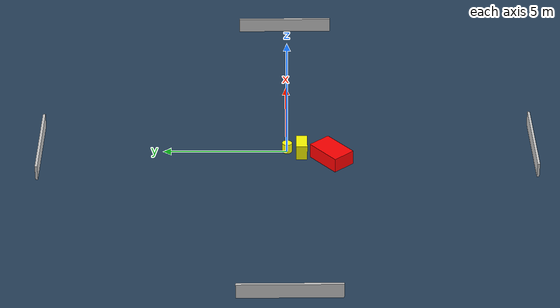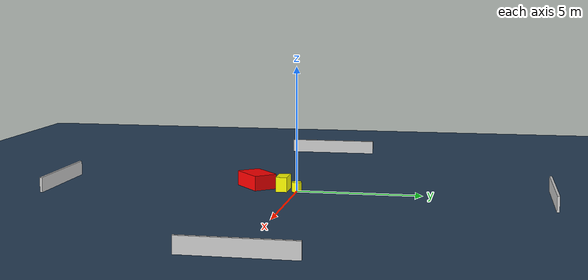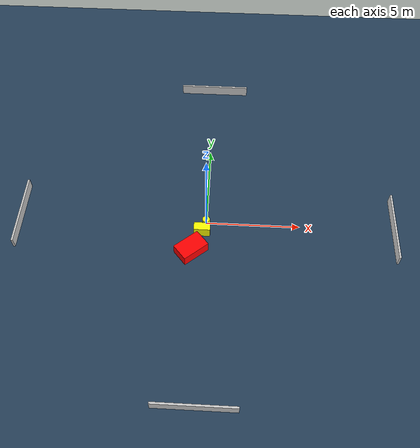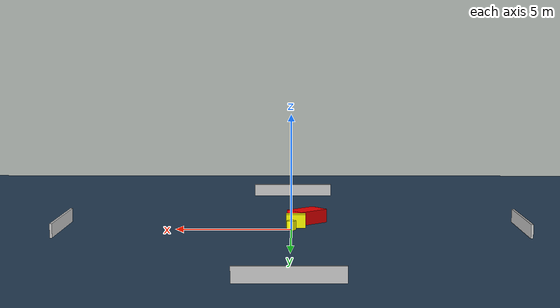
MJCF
<?xml version="1.0" ?>
<mujoco model="generated_environment">
  <option timestep="0.01" integrator="RK4" cone="elliptic"/>
  <default>
    <geom density="1"/>
  </default>
  <asset>
    <texture builtin="gradient" height="3072" name="skybox" rgb1="0.3 0.5 0.7" rgb2="0 0 0" type="skybox" width="512"/>
    <texture builtin="checker" height="300" name="groundplane" rgb1="0.2 0.3 0.4" rgb2="0.1 0.2 0.3" type="2d" width="300"/>
    <material name="groundplane" reflectance="0.2" texrepeat="5 5" texture="groundplane"/>
  </asset>
  <worldbody>
    <light dir="0 0 -1" directional="true" pos="0 0 1.5"/>
    <geom condim="3" friction="0.5 0.005 0.001" material="groundplane" name="floor" pos="0 0 0" size="0 0 0.05" type="plane"/>
    <body name="walls">
      <geom name="wall_1" condim="4" pos="-10.0 0.0 0.3" rgba="0.800000011920929 0.800000011920929 0.800000011920929 1.0" size="0.05 2.0 0.3" type="box"/>
      <geom name="wall_2" condim="4" pos="10.0 0.0 0.3" rgba="0.800000011920929 0.800000011920929 0.800000011920929 1.0" size="0.05 2.0 0.3" type="box"/>
      <geom name="wall_3" condim="4" pos="0.0 -10.0 0.3" rgba="0.800000011920929 0.800000011920929 0.800000011920929 1.0" size="2.0 0.05 0.3" type="box"/>
      <geom name="wall_4" condim="4" pos="0.0 10.0 0.3" rgba="0.800000011920929 0.800000011920929 0.800000011920929 1.0" size="2.0 0.05 0.3" type="box"/>
    </body>
    <body name="robot">
      <joint name="joint_x" type="slide" pos="0 0 0" axis="1 0 0"/>
      <joint name="joint_y" type="slide" pos="0 0 0" axis="0 1 0"/>
      <geom name="robot" type="cylinder" pos="0.0 0.0 0.2" size="0.2 0.2 0.0" mass="5.0" friction="1.0 0.005 0.0001" condim="4" rgba="1.0 1.0 0.0 1.0"/>
    </body>
    <body name="obstacle_1_movable">
      <geom name="obstacle_1_movable" condim="4" pos="-0.19685502662554694 -0.5871941295963554 0.3" euler="0 0 179.4898339801131" friction="0.0 0.005 0.001" rgba="1.0 1.0 0.0 1.0" size="0.4322210467212705 0.22857310325714458 0.3" type="box" mass="0.1"/>
      <joint type="free"/>
    </body>
    <body name="obstacle_2_static">
      <geom name="obstacle_2_static" condim="4" pos="-0.6958867629934736 -1.7835489507421642 0.3" euler="0 0 220.2358450615248" friction="0.0 0.005 0.001" rgba="1.0 0.0 0.0 1.0" size="0.7582505612766997 0.48754124620670697 0.3" type="box"/>
    </body>
  </worldbody>
  <actuator>
    <motor name="actuator_x" joint="joint_x" gear="1" ctrlrange="-1 1"/>
    <motor name="actuator_y" joint="joint_y" gear="1" ctrlrange="-1 1"/>
  </actuator>
</mujoco>
